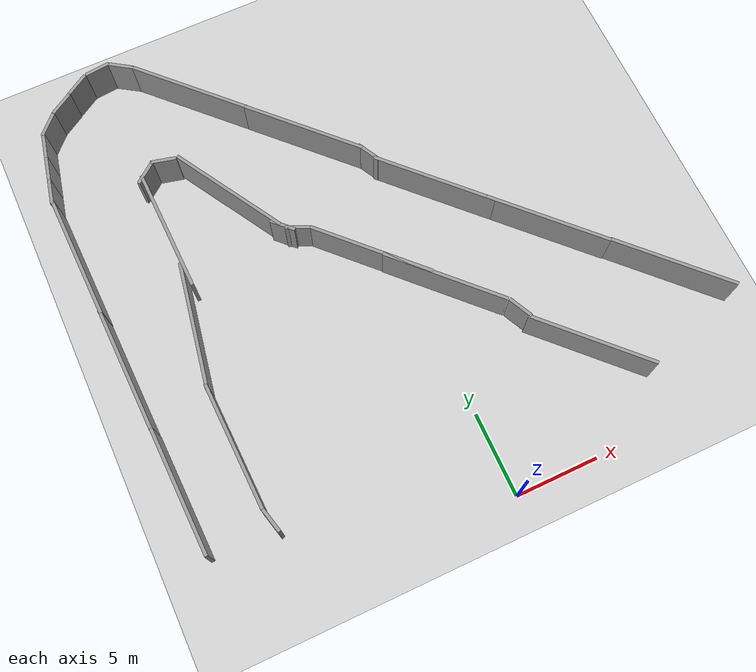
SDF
<sdf version="1.7">
 <world name="default">
  <model name="ground_plane">
   <static>1</static>
   <link name="link">
    <collision name="collision">
     <geometry><plane><normal>0 0 1</normal><size>100 100</size></plane></geometry>
     <surface>
      <contact><collide_bitmask>65535</collide_bitmask></contact>
      <friction><ode><mu>100</mu><mu2>50</mu2></ode></friction>
     </surface>
    </collision>
    <visual name="visual">
     <cast_shadows>0</cast_shadows>
     <geometry><plane><normal>0 0 1</normal><size>100 100</size></plane></geometry>
     <material>
      <script><uri>file://media/materials/scripts/gazebo.material</uri><name>Gazebo/Grey</name></script>
     </material>
    </visual>
   </link>
  </model>
  <model name="grey_wall_small_4">
   <link name="link">
    <pose>0 0 1.4 0 -0 0</pose>
    <inertial>
     <inertia><ixx>0</ixx><ixy>0</ixy><ixz>0</ixz><iyy>0</iyy><iyz>0</iyz><izz>0</izz></inertia>
     <mass>0</mass>
    </inertial>
    <visual name="visual">
     <cast_shadows>0</cast_shadows>
     <geometry><box><size>1.53178 0.2 2.8</size></box></geometry>
     <material>
      <script>
       <uri>model://grey_wall/materials/scripts</uri>
       <uri>model://grey_wall/materials/textures</uri>
       <name>vrc/grey_wall</name>
      </script>
      <shader type="pixel"/>
     </material>
    </visual>
    <collision name="collision">
     <geometry><box><size>1.53178 0.2 2.8</size></box></geometry>
     <surface>
      <friction>
       <ode><mu>1</mu><mu2>1</mu2><fdir1>0 0 0</fdir1><slip1>0</slip1><slip2>0</slip2></ode>
       <torsional>
        <coefficient>1</coefficient>
        <patch_radius>0</patch_radius>
        <surface_radius>0</surface_radius>
        <use_patch_radius>1</use_patch_radius>
        <ode><slip>0</slip></ode>
       </torsional>
      </friction>
      <bounce><restitution_coefficient>0</restitution_coefficient><threshold>1e+06</threshold></bounce>
      <contact>
       <collide_without_contact>0</collide_without_contact>
       <collide_without_contact_bitmask>1</collide_without_contact_bitmask>
       <collide_bitmask>1</collide_bitmask>
       <ode>
        <soft_cfm>0</soft_cfm>
        <soft_erp>0.2</soft_erp>
        <kp>1e+13</kp>
        <kd>1</kd>
        <max_vel>0.01</max_vel>
        <min_depth>0</min_depth>
       </ode>
       <bullet>
        <split_impulse>1</split_impulse>
        <split_impulse_penetration_threshold>-0.01</split_impulse_penetration_threshold>
        <soft_cfm>0</soft_cfm>
        <soft_erp>0.2</soft_erp>
        <kp>1e+13</kp>
        <kd>1</kd>
       </bullet>
      </contact>
     </surface>
    </collision>
   </link>
   <static>1</static>
   <pose>-12.7106 4.02154 0 0 0 -1.32722</pose>
  </model>
  <model name="grey_wall_5">
   <static>1</static>
   <link name="link">
    <pose>0 0 1.4 0 -0 0</pose>
    <collision name="collision"><geometry><box><size>7.5 0.2 2.8</size></box></geometry></collision>
    <visual name="visual">
     <cast_shadows>0</cast_shadows>
     <geometry><box><size>7.5 0.2 2.8</size></box></geometry>
     <material>
      <script>
       <uri>model://grey_wall/materials/scripts</uri>
       <uri>model://grey_wall/materials/textures</uri>
       <name>vrc/grey_wall</name>
      </script>
     </material>
    </visual>
   </link>
   <pose>-16.5624 7.45087 0 0 0 -1.54263</pose>
  </model>
  <model name="grey_wall_5_clone">
   <static>1</static>
   <link name="link">
    <pose>0 0 1.4 0 -0 0</pose>
    <collision name="collision"><geometry><box><size>7.5 0.2 2.8</size></box></geometry></collision>
    <visual name="visual">
     <cast_shadows>0</cast_shadows>
     <geometry><box><size>7.5 0.2 2.8</size></box></geometry>
     <material>
      <script>
       <uri>model://grey_wall/materials/scripts</uri>
       <uri>model://grey_wall/materials/textures</uri>
       <name>vrc/grey_wall</name>
      </script>
     </material>
    </visual>
   </link>
   <pose>-13.0002 8.47563 0 0 0 -1.54263</pose>
  </model>
  <model name="grey_wall_5_clone_0">
   <static>1</static>
   <link name="link">
    <pose>0 0 1.4 0 -0 0</pose>
    <collision name="collision"><geometry><box><size>7.5 0.2 2.8</size></box></geometry></collision>
    <visual name="visual">
     <cast_shadows>0</cast_shadows>
     <geometry><box><size>7.5 0.2 2.8</size></box></geometry>
     <material>
      <script>
       <uri>model://grey_wall/materials/scripts</uri>
       <uri>model://grey_wall/materials/textures</uri>
       <name>vrc/grey_wall</name>
      </script>
     </material>
    </visual>
   </link>
   <pose>-16.7856 14.8865 0 0 0 -1.54263</pose>
  </model>
  <model name="grey_wall_5_clone_1">
   <static>1</static>
   <link name="link">
    <pose>0 0 1.4 0 -0 0</pose>
    <collision name="collision"><geometry><box><size>7.5 0.2 2.8</size></box></geometry></collision>
    <visual name="visual">
     <cast_shadows>0</cast_shadows>
     <geometry><box><size>7.5 0.2 2.8</size></box></geometry>
     <material>
      <script>
       <uri>model://grey_wall/materials/scripts</uri>
       <uri>model://grey_wall/materials/textures</uri>
       <name>vrc/grey_wall</name>
      </script>
     </material>
    </visual>
   </link>
   <pose>-12.4471 15.6811 0 0 0 -1.74901</pose>
  </model>
  <model name="grey_wall_5_clone_2">
   <static>1</static>
   <link name="link">
    <pose>0 0 1.4 0 -0 0</pose>
    <collision name="collision"><geometry><box><size>7.5 0.2 2.8</size></box></geometry></collision>
    <visual name="visual">
     <cast_shadows>0</cast_shadows>
     <geometry><box><size>7.5 0.2 2.8</size></box></geometry>
     <material>
      <script>
       <uri>model://grey_wall/materials/scripts</uri>
       <uri>model://grey_wall/materials/textures</uri>
       <name>vrc/grey_wall</name>
      </script>
     </material>
    </visual>
   </link>
   <pose>-16.9651 22.1924 0 0 0 -1.54263</pose>
  </model>
  <model name="grey_wall_5_clone_3">
   <static>1</static>
   <link name="link">
    <pose>0 0 1.4 0 -0 0</pose>
    <collision name="collision"><geometry><box><size>7.5 0.2 2.8</size></box></geometry></collision>
    <visual name="visual">
     <cast_shadows>0</cast_shadows>
     <geometry><box><size>7.5 0.2 2.8</size></box></geometry>
     <material>
      <script>
       <uri>model://grey_wall/materials/scripts</uri>
       <uri>model://grey_wall/materials/textures</uri>
       <name>vrc/grey_wall</name>
      </script>
     </material>
    </visual>
   </link>
   <pose>-11.7315 21.5967 0 0 0 -1.54263</pose>
  </model>
  <model name="grey_wall_small_6">
   <link name="link">
    <pose>0 0 1.4 0 -0 0</pose>
    <inertial>
     <inertia><ixx>0</ixx><ixy>0</ixy><ixz>0</ixz><iyy>0</iyy><iyz>0</iyz><izz>0</izz></inertia>
     <mass>0</mass>
    </inertial>
    <visual name="visual">
     <cast_shadows>0</cast_shadows>
     <geometry><box><size>1.53178 0.2 2.8</size></box></geometry>
     <material>
      <script>
       <uri>model://grey_wall/materials/scripts</uri>
       <uri>model://grey_wall/materials/textures</uri>
       <name>vrc/grey_wall</name>
      </script>
      <shader type="pixel"/>
     </material>
    </visual>
    <collision name="collision">
     <geometry><box><size>1.53178 0.2 2.8</size></box></geometry>
     <surface>
      <friction>
       <ode><mu>1</mu><mu2>1</mu2><fdir1>0 0 0</fdir1><slip1>0</slip1><slip2>0</slip2></ode>
       <torsional>
        <coefficient>1</coefficient>
        <patch_radius>0</patch_radius>
        <surface_radius>0</surface_radius>
        <use_patch_radius>1</use_patch_radius>
        <ode><slip>0</slip></ode>
       </torsional>
      </friction>
      <bounce><restitution_coefficient>0</restitution_coefficient><threshold>1e+06</threshold></bounce>
      <contact>
       <collide_without_contact>0</collide_without_contact>
       <collide_without_contact_bitmask>1</collide_without_contact_bitmask>
       <collide_bitmask>1</collide_bitmask>
       <ode>
        <soft_cfm>0</soft_cfm>
        <soft_erp>0.2</soft_erp>
        <kp>1e+13</kp>
        <kd>1</kd>
        <max_vel>0.01</max_vel>
        <min_depth>0</min_depth>
       </ode>
       <bullet>
        <split_impulse>1</split_impulse>
        <split_impulse_penetration_threshold>-0.01</split_impulse_penetration_threshold>
        <soft_cfm>0</soft_cfm>
        <soft_erp>0.2</soft_erp>
        <kp>1e+13</kp>
        <kd>1</kd>
       </bullet>
      </contact>
     </surface>
    </collision>
   </link>
   <static>1</static>
   <pose>-16.9602 26.6179 0 0 0 -1.78958</pose>
  </model>
  <model name="grey_wall_small_6_clone">
   <link name="link">
    <pose>0 0 1.4 0 -0 0</pose>
    <inertial>
     <inertia><ixx>0</ixx><ixy>0</ixy><ixz>0</ixz><iyy>0</iyy><iyz>0</iyz><izz>0</izz></inertia>
     <mass>0</mass>
    </inertial>
    <visual name="visual">
     <cast_shadows>0</cast_shadows>
     <geometry><box><size>1.53178 0.2 2.8</size></box></geometry>
     <material>
      <script>
       <uri>model://grey_wall/materials/scripts</uri>
       <uri>model://grey_wall/materials/textures</uri>
       <name>vrc/grey_wall</name>
      </script>
      <shader type="pixel"/>
     </material>
    </visual>
    <collision name="collision">
     <geometry><box><size>1.53178 0.2 2.8</size></box></geometry>
     <surface>
      <friction>
       <ode><mu>1</mu><mu2>1</mu2><fdir1>0 0 0</fdir1><slip1>0</slip1><slip2>0</slip2></ode>
       <torsional>
        <coefficient>1</coefficient>
        <patch_radius>0</patch_radius>
        <surface_radius>0</surface_radius>
        <use_patch_radius>1</use_patch_radius>
        <ode><slip>0</slip></ode>
       </torsional>
      </friction>
      <bounce><restitution_coefficient>0</restitution_coefficient><threshold>1e+06</threshold></bounce>
      <contact>
       <collide_without_contact>0</collide_without_contact>
       <collide_without_contact_bitmask>1</collide_without_contact_bitmask>
       <collide_bitmask>1</collide_bitmask>
       <ode>
        <soft_cfm>0</soft_cfm>
        <soft_erp>0.2</soft_erp>
        <kp>1e+13</kp>
        <kd>1</kd>
        <max_vel>0.01</max_vel>
        <min_depth>0</min_depth>
       </ode>
       <bullet>
        <split_impulse>1</split_impulse>
        <split_impulse_penetration_threshold>-0.01</split_impulse_penetration_threshold>
        <soft_cfm>0</soft_cfm>
        <soft_erp>0.2</soft_erp>
        <kp>1e+13</kp>
        <kd>1</kd>
       </bullet>
      </contact>
     </surface>
    </collision>
   </link>
   <static>1</static>
   <pose>-16.6343 28.0738 0 0 0 -1.78958</pose>
  </model>
  <model name="grey_wall_small_6_clone_0">
   <link name="link">
    <pose>0 0 1.4 0 -0 0</pose>
    <inertial>
     <inertia><ixx>0</ixx><ixy>0</ixy><ixz>0</ixz><iyy>0</iyy><iyz>0</iyz><izz>0</izz></inertia>
     <mass>0</mass>
    </inertial>
    <visual name="visual">
     <cast_shadows>0</cast_shadows>
     <geometry><box><size>1.53178 0.2 2.8</size></box></geometry>
     <material>
      <script>
       <uri>model://grey_wall/materials/scripts</uri>
       <uri>model://grey_wall/materials/textures</uri>
       <name>vrc/grey_wall</name>
      </script>
      <shader type="pixel"/>
     </material>
    </visual>
    <collision name="collision">
     <geometry><box><size>1.53178 0.2 2.8</size></box></geometry>
     <surface>
      <friction>
       <ode><mu>1</mu><mu2>1</mu2><fdir1>0 0 0</fdir1><slip1>0</slip1><slip2>0</slip2></ode>
       <torsional>
        <coefficient>1</coefficient>
        <patch_radius>0</patch_radius>
        <surface_radius>0</surface_radius>
        <use_patch_radius>1</use_patch_radius>
        <ode><slip>0</slip></ode>
       </torsional>
      </friction>
      <bounce><restitution_coefficient>0</restitution_coefficient><threshold>1e+06</threshold></bounce>
      <contact>
       <collide_without_contact>0</collide_without_contact>
       <collide_without_contact_bitmask>1</collide_without_contact_bitmask>
       <collide_bitmask>1</collide_bitmask>
       <ode>
        <soft_cfm>0</soft_cfm>
        <soft_erp>0.2</soft_erp>
        <kp>1e+13</kp>
        <kd>1</kd>
        <max_vel>0.01</max_vel>
        <min_depth>0</min_depth>
       </ode>
       <bullet>
        <split_impulse>1</split_impulse>
        <split_impulse_penetration_threshold>-0.01</split_impulse_penetration_threshold>
        <soft_cfm>0</soft_cfm>
        <soft_erp>0.2</soft_erp>
        <kp>1e+13</kp>
        <kd>1</kd>
       </bullet>
      </contact>
     </surface>
    </collision>
   </link>
   <static>1</static>
   <pose>-16.31 29.53 0 0 0 -1.78958</pose>
  </model>
  <model name="grey_wall_small_7">
   <link name="link">
    <pose>0 0 1.4 0 -0 0</pose>
    <inertial>
     <inertia><ixx>0</ixx><ixy>0</ixy><ixz>0</ixz><iyy>0</iyy><iyz>0</iyz><izz>0</izz></inertia>
     <mass>0</mass>
    </inertial>
    <visual name="visual">
     <cast_shadows>0</cast_shadows>
     <geometry><box><size>1.53178 0.2 2.8</size></box></geometry>
     <material>
      <script>
       <uri>model://grey_wall/materials/scripts</uri>
       <uri>model://grey_wall/materials/textures</uri>
       <name>vrc/grey_wall</name>
      </script>
      <shader type="pixel"/>
     </material>
    </visual>
    <collision name="collision">
     <geometry><box><size>1.53178 0.2 2.8</size></box></geometry>
     <surface>
      <friction>
       <ode><mu>1</mu><mu2>1</mu2><fdir1>0 0 0</fdir1><slip1>0</slip1><slip2>0</slip2></ode>
       <torsional>
        <coefficient>1</coefficient>
        <patch_radius>0</patch_radius>
        <surface_radius>0</surface_radius>
        <use_patch_radius>1</use_patch_radius>
        <ode><slip>0</slip></ode>
       </torsional>
      </friction>
      <bounce><restitution_coefficient>0</restitution_coefficient><threshold>1e+06</threshold></bounce>
      <contact>
       <collide_without_contact>0</collide_without_contact>
       <collide_without_contact_bitmask>1</collide_without_contact_bitmask>
       <collide_bitmask>1</collide_bitmask>
       <ode>
        <soft_cfm>0</soft_cfm>
        <soft_erp>0.2</soft_erp>
        <kp>1e+13</kp>
        <kd>1</kd>
        <max_vel>0.01</max_vel>
        <min_depth>0</min_depth>
       </ode>
       <bullet>
        <split_impulse>1</split_impulse>
        <split_impulse_penetration_threshold>-0.01</split_impulse_penetration_threshold>
        <soft_cfm>0</soft_cfm>
        <soft_erp>0.2</soft_erp>
        <kp>1e+13</kp>
        <kd>1</kd>
       </bullet>
      </contact>
     </surface>
    </collision>
   </link>
   <static>1</static>
   <pose>-15.667 30.7806 -0 0 -0 0.800233</pose>
  </model>
  <model name="grey_wall_small_8">
   <link name="link">
    <pose>0 0 1.4 0 -0 0</pose>
    <inertial>
     <inertia><ixx>0</ixx><ixy>0</ixy><ixz>0</ixz><iyy>0</iyy><iyz>0</iyz><izz>0</izz></inertia>
     <mass>0</mass>
    </inertial>
    <visual name="visual">
     <cast_shadows>0</cast_shadows>
     <geometry><box><size>1.53178 0.2 2.8</size></box></geometry>
     <material>
      <script>
       <uri>model://grey_wall/materials/scripts</uri>
       <uri>model://grey_wall/materials/textures</uri>
       <name>vrc/grey_wall</name>
      </script>
      <shader type="pixel"/>
     </material>
    </visual>
    <collision name="collision">
     <geometry><box><size>1.53178 0.2 2.8</size></box></geometry>
     <surface>
      <friction>
       <ode><mu>1</mu><mu2>1</mu2><fdir1>0 0 0</fdir1><slip1>0</slip1><slip2>0</slip2></ode>
       <torsional>
        <coefficient>1</coefficient>
        <patch_radius>0</patch_radius>
        <surface_radius>0</surface_radius>
        <use_patch_radius>1</use_patch_radius>
        <ode><slip>0</slip></ode>
       </torsional>
      </friction>
      <bounce><restitution_coefficient>0</restitution_coefficient><threshold>1e+06</threshold></bounce>
      <contact>
       <collide_without_contact>0</collide_without_contact>
       <collide_without_contact_bitmask>1</collide_without_contact_bitmask>
       <collide_bitmask>1</collide_bitmask>
       <ode>
        <soft_cfm>0</soft_cfm>
        <soft_erp>0.2</soft_erp>
        <kp>1e+13</kp>
        <kd>1</kd>
        <max_vel>0.01</max_vel>
        <min_depth>0</min_depth>
       </ode>
       <bullet>
        <split_impulse>1</split_impulse>
        <split_impulse_penetration_threshold>-0.01</split_impulse_penetration_threshold>
        <soft_cfm>0</soft_cfm>
        <soft_erp>0.2</soft_erp>
        <kp>1e+13</kp>
        <kd>1</kd>
       </bullet>
      </contact>
     </surface>
    </collision>
   </link>
   <static>1</static>
   <pose>-14.4817 31.7597 -0 0 -0 0.555531</pose>
  </model>
  <model name="grey_wall_small_8_clone">
   <link name="link">
    <pose>0 0 1.4 0 -0 0</pose>
    <inertial>
     <inertia><ixx>0</ixx><ixy>0</ixy><ixz>0</ixz><iyy>0</iyy><iyz>0</iyz><izz>0</izz></inertia>
     <mass>0</mass>
    </inertial>
    <visual name="visual">
     <cast_shadows>0</cast_shadows>
     <geometry><box><size>1.53178 0.2 2.8</size></box></geometry>
     <material>
      <script>
       <uri>model://grey_wall/materials/scripts</uri>
       <uri>model://grey_wall/materials/textures</uri>
       <name>vrc/grey_wall</name>
      </script>
      <shader type="pixel"/>
     </material>
    </visual>
    <collision name="collision">
     <geometry><box><size>1.53178 0.2 2.8</size></box></geometry>
     <surface>
      <friction>
       <ode><mu>1</mu><mu2>1</mu2><fdir1>0 0 0</fdir1><slip1>0</slip1><slip2>0</slip2></ode>
       <torsional>
        <coefficient>1</coefficient>
        <patch_radius>0</patch_radius>
        <surface_radius>0</surface_radius>
        <use_patch_radius>1</use_patch_radius>
        <ode><slip>0</slip></ode>
       </torsional>
      </friction>
      <bounce><restitution_coefficient>0</restitution_coefficient><threshold>1e+06</threshold></bounce>
      <contact>
       <collide_without_contact>0</collide_without_contact>
       <collide_without_contact_bitmask>1</collide_without_contact_bitmask>
       <collide_bitmask>1</collide_bitmask>
       <ode>
        <soft_cfm>0</soft_cfm>
        <soft_erp>0.2</soft_erp>
        <kp>1e+13</kp>
        <kd>1</kd>
        <max_vel>0.01</max_vel>
        <min_depth>0</min_depth>
       </ode>
       <bullet>
        <split_impulse>1</split_impulse>
        <split_impulse_penetration_threshold>-0.01</split_impulse_penetration_threshold>
        <soft_cfm>0</soft_cfm>
        <soft_erp>0.2</soft_erp>
        <kp>1e+13</kp>
        <kd>1</kd>
       </bullet>
      </contact>
     </surface>
    </collision>
   </link>
   <static>1</static>
   <pose>-13.2113 32.5753 -0 0 -0 0.555531</pose>
  </model>
  <model name="grey_wall_small_8_clone_0">
   <link name="link">
    <pose>0 0 1.4 0 -0 0</pose>
    <inertial>
     <inertia><ixx>0</ixx><ixy>0</ixy><ixz>0</ixz><iyy>0</iyy><iyz>0</iyz><izz>0</izz></inertia>
     <mass>0</mass>
    </inertial>
    <visual name="visual">
     <cast_shadows>0</cast_shadows>
     <geometry><box><size>1.53178 0.2 2.8</size></box></geometry>
     <material>
      <script>
       <uri>model://grey_wall/materials/scripts</uri>
       <uri>model://grey_wall/materials/textures</uri>
       <name>vrc/grey_wall</name>
      </script>
      <shader type="pixel"/>
     </material>
    </visual>
    <collision name="collision">
     <geometry><box><size>1.53178 0.2 2.8</size></box></geometry>
     <surface>
      <friction>
       <ode><mu>1</mu><mu2>1</mu2><fdir1>0 0 0</fdir1><slip1>0</slip1><slip2>0</slip2></ode>
       <torsional>
        <coefficient>1</coefficient>
        <patch_radius>0</patch_radius>
        <surface_radius>0</surface_radius>
        <use_patch_radius>1</use_patch_radius>
        <ode><slip>0</slip></ode>
       </torsional>
      </friction>
      <bounce><restitution_coefficient>0</restitution_coefficient><threshold>1e+06</threshold></bounce>
      <contact>
       <collide_without_contact>0</collide_without_contact>
       <collide_without_contact_bitmask>1</collide_without_contact_bitmask>
       <collide_bitmask>1</collide_bitmask>
       <ode>
        <soft_cfm>0</soft_cfm>
        <soft_erp>0.2</soft_erp>
        <kp>1e+13</kp>
        <kd>1</kd>
        <max_vel>0.01</max_vel>
        <min_depth>0</min_depth>
       </ode>
       <bullet>
        <split_impulse>1</split_impulse>
        <split_impulse_penetration_threshold>-0.01</split_impulse_penetration_threshold>
        <soft_cfm>0</soft_cfm>
        <soft_erp>0.2</soft_erp>
        <kp>1e+13</kp>
        <kd>1</kd>
       </bullet>
      </contact>
     </surface>
    </collision>
   </link>
   <static>1</static>
   <pose>-11.7464 33.068 0 0 -0 0.102813</pose>
  </model>
  <model name="grey_wall_6">
   <static>1</static>
   <link name="link">
    <pose>0 0 1.4 0 -0 0</pose>
    <collision name="collision"><geometry><box><size>7.5 0.2 2.8</size></box></geometry></collision>
    <visual name="visual">
     <cast_shadows>0</cast_shadows>
     <geometry><box><size>7.5 0.2 2.8</size></box></geometry>
     <material>
      <script>
       <uri>model://grey_wall/materials/scripts</uri>
       <uri>model://grey_wall/materials/textures</uri>
       <name>vrc/grey_wall</name>
      </script>
     </material>
    </visual>
   </link>
   <pose>7.26864 5.63896 -0 0 0 -0.79968</pose>
  </model>
  <model name="grey_wall_6_clone_1">
   <static>1</static>
   <link name="link">
    <pose>0 0 1.4 0 -0 0</pose>
    <collision name="collision"><geometry><box><size>7.5 0.2 2.8</size></box></geometry></collision>
    <visual name="visual">
     <cast_shadows>0</cast_shadows>
     <geometry><box><size>7.5 0.2 2.8</size></box></geometry>
     <material>
      <script>
       <uri>model://grey_wall/materials/scripts</uri>
       <uri>model://grey_wall/materials/textures</uri>
       <name>vrc/grey_wall</name>
      </script>
     </material>
    </visual>
   </link>
   <pose>-7.59676 22.4079 0 0 0 -1.04224</pose>
  </model>
  <model name="grey_wall_small_8_clone_clone">
   <link name="link">
    <pose>0 0 1.4 0 -0 0</pose>
    <inertial>
     <inertia><ixx>0</ixx><ixy>0</ixy><ixz>0</ixz><iyy>0</iyy><iyz>0</iyz><izz>0</izz></inertia>
     <mass>0</mass>
    </inertial>
    <visual name="visual">
     <cast_shadows>0</cast_shadows>
     <geometry><box><size>1.53178 0.2 2.8</size></box></geometry>
     <material>
      <script>
       <uri>model://grey_wall/materials/scripts</uri>
       <uri>model://grey_wall/materials/textures</uri>
       <name>vrc/grey_wall</name>
      </script>
      <shader type="pixel"/>
     </material>
    </visual>
    <collision name="collision">
     <geometry><box><size>1.53178 0.2 2.8</size></box></geometry>
     <surface>
      <friction>
       <ode><mu>1</mu><mu2>1</mu2><fdir1>0 0 0</fdir1><slip1>0</slip1><slip2>0</slip2></ode>
       <torsional>
        <coefficient>1</coefficient>
        <patch_radius>0</patch_radius>
        <surface_radius>0</surface_radius>
        <use_patch_radius>1</use_patch_radius>
        <ode><slip>0</slip></ode>
       </torsional>
      </friction>
      <bounce><restitution_coefficient>0</restitution_coefficient><threshold>1e+06</threshold></bounce>
      <contact>
       <collide_without_contact>0</collide_without_contact>
       <collide_without_contact_bitmask>1</collide_without_contact_bitmask>
       <collide_bitmask>1</collide_bitmask>
       <ode>
        <soft_cfm>0</soft_cfm>
        <soft_erp>0.2</soft_erp>
        <kp>1e+13</kp>
        <kd>1</kd>
        <max_vel>0.01</max_vel>
        <min_depth>0</min_depth>
       </ode>
       <bullet>
        <split_impulse>1</split_impulse>
        <split_impulse_penetration_threshold>-0.01</split_impulse_penetration_threshold>
        <soft_cfm>0</soft_cfm>
        <soft_erp>0.2</soft_erp>
        <kp>1e+13</kp>
        <kd>1</kd>
       </bullet>
      </contact>
     </surface>
    </collision>
   </link>
   <static>1</static>
   <pose>-10.3732 32.6921 0 0 0 -0.581724</pose>
  </model>
  <model name="grey_wall_6_clone_1_clone">
   <static>1</static>
   <link name="link">
    <pose>0 0 1.4 0 -0 0</pose>
    <collision name="collision"><geometry><box><size>7.5 0.2 2.8</size></box></geometry></collision>
    <visual name="visual">
     <cast_shadows>0</cast_shadows>
     <geometry><box><size>7.5 0.2 2.8</size></box></geometry>
     <material>
      <script>
       <uri>model://grey_wall/materials/scripts</uri>
       <uri>model://grey_wall/materials/textures</uri>
       <name>vrc/grey_wall</name>
      </script>
     </material>
    </visual>
   </link>
   <pose>-7.20728 29.6625 -0 0 0 -0.79968</pose>
  </model>
  <model name="grey_wall_6_clone_1_clone_0">
   <static>1</static>
   <link name="link">
    <pose>0 0 1.4 0 -0 0</pose>
    <collision name="collision"><geometry><box><size>7.5 0.2 2.8</size></box></geometry></collision>
    <visual name="visual">
     <cast_shadows>0</cast_shadows>
     <geometry><box><size>7.5 0.2 2.8</size></box></geometry>
     <material>
      <script>
       <uri>model://grey_wall/materials/scripts</uri>
       <uri>model://grey_wall/materials/textures</uri>
       <name>vrc/grey_wall</name>
      </script>
     </material>
    </visual>
   </link>
   <pose>-2.04813 24.3419 -0 0 0 -0.79968</pose>
  </model>
  <model name="grey_wall_small_10">
   <link name="link">
    <pose>0 0 1.4 0 -0 0</pose>
    <inertial>
     <inertia><ixx>0</ixx><ixy>0</ixy><ixz>0</ixz><iyy>0</iyy><iyz>0</iyz><izz>0</izz></inertia>
     <mass>0</mass>
    </inertial>
    <visual name="visual">
     <cast_shadows>0</cast_shadows>
     <geometry><box><size>1.53178 0.2 2.8</size></box></geometry>
     <material>
      <script>
       <uri>model://grey_wall/materials/scripts</uri>
       <uri>model://grey_wall/materials/textures</uri>
       <name>vrc/grey_wall</name>
      </script>
      <shader type="pixel"/>
     </material>
    </visual>
    <collision name="collision">
     <geometry><box><size>1.53178 0.2 2.8</size></box></geometry>
     <surface>
      <friction>
       <ode><mu>1</mu><mu2>1</mu2><fdir1>0 0 0</fdir1><slip1>0</slip1><slip2>0</slip2></ode>
       <torsional>
        <coefficient>1</coefficient>
        <patch_radius>0</patch_radius>
        <surface_radius>0</surface_radius>
        <use_patch_radius>1</use_patch_radius>
        <ode><slip>0</slip></ode>
       </torsional>
      </friction>
      <bounce><restitution_coefficient>0</restitution_coefficient><threshold>1e+06</threshold></bounce>
      <contact>
       <collide_without_contact>0</collide_without_contact>
       <collide_without_contact_bitmask>1</collide_without_contact_bitmask>
       <collide_bitmask>1</collide_bitmask>
       <ode>
        <soft_cfm>0</soft_cfm>
        <soft_erp>0.2</soft_erp>
        <kp>1e+13</kp>
        <kd>1</kd>
        <max_vel>0.01</max_vel>
        <min_depth>0</min_depth>
       </ode>
       <bullet>
        <split_impulse>1</split_impulse>
        <split_impulse_penetration_threshold>-0.01</split_impulse_penetration_threshold>
        <soft_cfm>0</soft_cfm>
        <soft_erp>0.2</soft_erp>
        <kp>1e+13</kp>
        <kd>1</kd>
       </bullet>
      </contact>
     </surface>
    </collision>
   </link>
   <static>1</static>
   <pose>-4.85073 18.5777 0 0 0 -0.421102</pose>
  </model>
  <model name="grey_wall_6_clone_1_clone_1">
   <static>1</static>
   <link name="link">
    <pose>0 0 1.4 0 -0 0</pose>
    <collision name="collision"><geometry><box><size>7.5 0.2 2.8</size></box></geometry></collision>
    <visual name="visual">
     <cast_shadows>0</cast_shadows>
     <geometry><box><size>7.5 0.2 2.8</size></box></geometry>
     <material>
      <script>
       <uri>model://grey_wall/materials/scripts</uri>
       <uri>model://grey_wall/materials/textures</uri>
       <name>vrc/grey_wall</name>
      </script>
     </material>
    </visual>
   </link>
   <pose>-1.62974 15.6407 -0 0 0 -0.79968</pose>
  </model>
  <model name="grey_wall_6_clone_1_clone_2">
   <static>1</static>
   <link name="link">
    <pose>0 0 1.4 0 -0 0</pose>
    <collision name="collision"><geometry><box><size>7.5 0.2 2.8</size></box></geometry></collision>
    <visual name="visual">
     <cast_shadows>0</cast_shadows>
     <geometry><box><size>7.5 0.2 2.8</size></box></geometry>
     <material>
      <script>
       <uri>model://grey_wall/materials/scripts</uri>
       <uri>model://grey_wall/materials/textures</uri>
       <name>vrc/grey_wall</name>
      </script>
     </material>
    </visual>
   </link>
   <pose>1.47741 12.391 -0 0 0 -0.79968</pose>
  </model>
  <model name="grey_wall_small_11">
   <link name="link">
    <pose>0 0 1.4 0 -0 0</pose>
    <inertial>
     <inertia><ixx>0</ixx><ixy>0</ixy><ixz>0</ixz><iyy>0</iyy><iyz>0</iyz><izz>0</izz></inertia>
     <mass>0</mass>
    </inertial>
    <visual name="visual">
     <cast_shadows>0</cast_shadows>
     <geometry><box><size>1.53178 0.2 2.8</size></box></geometry>
     <material>
      <script>
       <uri>model://grey_wall/materials/scripts</uri>
       <uri>model://grey_wall/materials/textures</uri>
       <name>vrc/grey_wall</name>
      </script>
      <shader type="pixel"/>
     </material>
    </visual>
    <collision name="collision">
     <geometry><box><size>1.53178 0.2 2.8</size></box></geometry>
     <surface>
      <friction>
       <ode><mu>1</mu><mu2>1</mu2><fdir1>0 0 0</fdir1><slip1>0</slip1><slip2>0</slip2></ode>
       <torsional>
        <coefficient>1</coefficient>
        <patch_radius>0</patch_radius>
        <surface_radius>0</surface_radius>
        <use_patch_radius>1</use_patch_radius>
        <ode><slip>0</slip></ode>
       </torsional>
      </friction>
      <bounce><restitution_coefficient>0</restitution_coefficient><threshold>1e+06</threshold></bounce>
      <contact>
       <collide_without_contact>0</collide_without_contact>
       <collide_without_contact_bitmask>1</collide_without_contact_bitmask>
       <collide_bitmask>1</collide_bitmask>
       <ode>
        <soft_cfm>0</soft_cfm>
        <soft_erp>0.2</soft_erp>
        <kp>1e+13</kp>
        <kd>1</kd>
        <max_vel>0.01</max_vel>
        <min_depth>0</min_depth>
       </ode>
       <bullet>
        <split_impulse>1</split_impulse>
        <split_impulse_penetration_threshold>-0.01</split_impulse_penetration_threshold>
        <soft_cfm>0</soft_cfm>
        <soft_erp>0.2</soft_erp>
        <kp>1e+13</kp>
        <kd>1</kd>
       </bullet>
      </contact>
     </surface>
    </collision>
   </link>
   <static>1</static>
   <pose>0.784588 21.1992 0 0 0 -1.08132</pose>
  </model>
  <model name="grey_wall_6_clone_1_clone_3">
   <static>1</static>
   <link name="link">
    <pose>0 0 1.4 0 -0 0</pose>
    <collision name="collision"><geometry><box><size>7.5 0.2 2.8</size></box></geometry></collision>
    <visual name="visual">
     <cast_shadows>0</cast_shadows>
     <geometry><box><size>7.5 0.2 2.8</size></box></geometry>
     <material>
      <script>
       <uri>model://grey_wall/materials/scripts</uri>
       <uri>model://grey_wall/materials/textures</uri>
       <name>vrc/grey_wall</name>
      </script>
     </material>
    </visual>
   </link>
   <pose>3.53604 18.0815 -0 0 0 -0.79968</pose>
  </model>
  <model name="grey_wall_small_12">
   <link name="link">
    <pose>0 0 1.4 0 -0 0</pose>
    <inertial>
     <inertia><ixx>0</ixx><ixy>0</ixy><ixz>0</ixz><iyy>0</iyy><iyz>0</iyz><izz>0</izz></inertia>
     <mass>0</mass>
    </inertial>
    <visual name="visual">
     <cast_shadows>0</cast_shadows>
     <geometry><box><size>1.53178 0.2 2.8</size></box></geometry>
     <material>
      <script>
       <uri>model://grey_wall/materials/scripts</uri>
       <uri>model://grey_wall/materials/textures</uri>
       <name>vrc/grey_wall</name>
      </script>
      <shader type="pixel"/>
     </material>
    </visual>
    <collision name="collision">
     <geometry><box><size>1.53178 0.2 2.8</size></box></geometry>
     <surface>
      <friction>
       <ode><mu>1</mu><mu2>1</mu2><fdir1>0 0 0</fdir1><slip1>0</slip1><slip2>0</slip2></ode>
       <torsional>
        <coefficient>1</coefficient>
        <patch_radius>0</patch_radius>
        <surface_radius>0</surface_radius>
        <use_patch_radius>1</use_patch_radius>
        <ode><slip>0</slip></ode>
       </torsional>
      </friction>
      <bounce><restitution_coefficient>0</restitution_coefficient><threshold>1e+06</threshold></bounce>
      <contact>
       <collide_without_contact>0</collide_without_contact>
       <collide_without_contact_bitmask>1</collide_without_contact_bitmask>
       <collide_bitmask>1</collide_bitmask>
       <ode>
        <soft_cfm>0</soft_cfm>
        <soft_erp>0.2</soft_erp>
        <kp>1e+13</kp>
        <kd>1</kd>
        <max_vel>0.01</max_vel>
        <min_depth>0</min_depth>
       </ode>
       <bullet>
        <split_impulse>1</split_impulse>
        <split_impulse_penetration_threshold>-0.01</split_impulse_penetration_threshold>
        <soft_cfm>0</soft_cfm>
        <soft_erp>0.2</soft_erp>
        <kp>1e+13</kp>
        <kd>1</kd>
       </bullet>
      </contact>
     </surface>
    </collision>
   </link>
   <static>1</static>
   <pose>4.48051 8.96075 -0 0 0 -1.12298</pose>
  </model>
  <model name="grey_wall_6_clone_1_clone_4">
   <static>1</static>
   <link name="link">
    <pose>0 0 1.4 0 -0 0</pose>
    <collision name="collision"><geometry><box><size>7.5 0.2 2.8</size></box></geometry></collision>
    <visual name="visual">
     <cast_shadows>0</cast_shadows>
     <geometry><box><size>7.5 0.2 2.8</size></box></geometry>
     <material>
      <script>
       <uri>model://grey_wall/materials/scripts</uri>
       <uri>model://grey_wall/materials/textures</uri>
       <name>vrc/grey_wall</name>
      </script>
     </material>
    </visual>
   </link>
   <pose>8.39752 13.0831 -0 0 0 -0.79968</pose>
  </model>
  <model name="grey_wall_6_clone_1_clone_5">
   <static>1</static>
   <link name="link">
    <pose>0 0 1.4 0 -0 0</pose>
    <collision name="collision"><geometry><box><size>7.5 0.2 2.8</size></box></geometry></collision>
    <visual name="visual">
     <cast_shadows>0</cast_shadows>
     <geometry><box><size>7.5 0.2 2.8</size></box></geometry>
     <material>
      <script>
       <uri>model://grey_wall/materials/scripts</uri>
       <uri>model://grey_wall/materials/textures</uri>
       <name>vrc/grey_wall</name>
      </script>
     </material>
    </visual>
   </link>
   <pose>13.62 7.76157 -0 0 0 -0.79968</pose>
  </model>
  <model name="grey_wall_small_9">
   <link name="link">
    <pose>0 0 1.4 0 -0 0</pose>
    <inertial>
     <inertia><ixx>0</ixx><ixy>0</ixy><ixz>0</ixz><iyy>0</iyy><iyz>0</iyz><izz>0</izz></inertia>
     <mass>0</mass>
    </inertial>
    <visual name="visual">
     <cast_shadows>0</cast_shadows>
     <geometry><box><size>1.53178 0.2 2.8</size></box></geometry>
     <material>
      <script>
       <uri>model://grey_wall/materials/scripts</uri>
       <uri>model://grey_wall/materials/textures</uri>
       <name>vrc/grey_wall</name>
      </script>
      <shader type="pixel"/>
     </material>
    </visual>
    <collision name="collision">
     <geometry><box><size>1.53178 0.2 2.8</size></box></geometry>
     <surface>
      <friction>
       <ode><mu>1</mu><mu2>1</mu2><fdir1>0 0 0</fdir1><slip1>0</slip1><slip2>0</slip2></ode>
       <torsional>
        <coefficient>1</coefficient>
        <patch_radius>0</patch_radius>
        <surface_radius>0</surface_radius>
        <use_patch_radius>1</use_patch_radius>
        <ode><slip>0</slip></ode>
       </torsional>
      </friction>
      <bounce><restitution_coefficient>0</restitution_coefficient><threshold>1e+06</threshold></bounce>
      <contact>
       <collide_without_contact>0</collide_without_contact>
       <collide_without_contact_bitmask>1</collide_without_contact_bitmask>
       <collide_bitmask>1</collide_bitmask>
       <ode>
        <soft_cfm>0</soft_cfm>
        <soft_erp>0.2</soft_erp>
        <kp>1e+13</kp>
        <kd>1</kd>
        <max_vel>0.01</max_vel>
        <min_depth>0</min_depth>
       </ode>
       <bullet>
        <split_impulse>1</split_impulse>
        <split_impulse_penetration_threshold>-0.01</split_impulse_penetration_threshold>
        <soft_cfm>0</soft_cfm>
        <soft_erp>0.2</soft_erp>
        <kp>1e+13</kp>
        <kd>1</kd>
       </bullet>
      </contact>
     </surface>
    </collision>
   </link>
   <static>1</static>
   <pose>-11.5518 25.4321 0 0 -0 0.671078</pose>
  </model>
  <model name="grey_wall_small_15">
   <link name="link">
    <pose>0 0 1.4 0 -0 0</pose>
    <inertial>
     <inertia><ixx>0</ixx><ixy>0</ixy><ixz>0</ixz><iyy>0</iyy><iyz>0</iyz><izz>0</izz></inertia>
     <mass>0</mass>
    </inertial>
    <visual name="visual">
     <cast_shadows>0</cast_shadows>
     <geometry><box><size>1.53178 0.2 2.8</size></box></geometry>
     <material>
      <script>
       <uri>model://grey_wall/materials/scripts</uri>
       <uri>model://grey_wall/materials/textures</uri>
       <name>vrc/grey_wall</name>
      </script>
      <shader type="pixel"/>
     </material>
    </visual>
    <collision name="collision">
     <geometry><box><size>1.53178 0.2 2.8</size></box></geometry>
     <surface>
      <friction>
       <ode><mu>1</mu><mu2>1</mu2><fdir1>0 0 0</fdir1><slip1>0</slip1><slip2>0</slip2></ode>
       <torsional>
        <coefficient>1</coefficient>
        <patch_radius>0</patch_radius>
        <surface_radius>0</surface_radius>
        <use_patch_radius>1</use_patch_radius>
        <ode><slip>0</slip></ode>
       </torsional>
      </friction>
      <bounce><restitution_coefficient>0</restitution_coefficient><threshold>1e+06</threshold></bounce>
      <contact>
       <collide_without_contact>0</collide_without_contact>
       <collide_without_contact_bitmask>1</collide_without_contact_bitmask>
       <collide_bitmask>1</collide_bitmask>
       <ode>
        <soft_cfm>0</soft_cfm>
        <soft_erp>0.2</soft_erp>
        <kp>1e+13</kp>
        <kd>1</kd>
        <max_vel>0.01</max_vel>
        <min_depth>0</min_depth>
       </ode>
       <bullet>
        <split_impulse>1</split_impulse>
        <split_impulse_penetration_threshold>-0.01</split_impulse_penetration_threshold>
        <soft_cfm>0</soft_cfm>
        <soft_erp>0.2</soft_erp>
        <kp>1e+13</kp>
        <kd>1</kd>
       </bullet>
      </contact>
     </surface>
    </collision>
   </link>
   <static>1</static>
   <pose>-10.3181 25.7474 0 0 0 -0.240845</pose>
  </model>
  <model name="grey_wall_small_16">
   <link name="link">
    <pose>0 0 1.4 0 -0 0</pose>
    <inertial>
     <inertia><ixx>0</ixx><ixy>0</ixy><ixz>0</ixz><iyy>0</iyy><iyz>0</iyz><izz>0</izz></inertia>
     <mass>0</mass>
    </inertial>
    <visual name="visual">
     <cast_shadows>0</cast_shadows>
     <geometry><box><size>1.53178 0.2 2.8</size></box></geometry>
     <material>
      <script>
       <uri>model://grey_wall/materials/scripts</uri>
       <uri>model://grey_wall/materials/textures</uri>
       <name>vrc/grey_wall</name>
      </script>
      <shader type="pixel"/>
     </material>
    </visual>
    <collision name="collision">
     <geometry><box><size>1.53178 0.2 2.8</size></box></geometry>
     <surface>
      <friction>
       <ode><mu>1</mu><mu2>1</mu2><fdir1>0 0 0</fdir1><slip1>0</slip1><slip2>0</slip2></ode>
       <torsional>
        <coefficient>1</coefficient>
        <patch_radius>0</patch_radius>
        <surface_radius>0</surface_radius>
        <use_patch_radius>1</use_patch_radius>
        <ode><slip>0</slip></ode>
       </torsional>
      </friction>
      <bounce><restitution_coefficient>0</restitution_coefficient><threshold>1e+06</threshold></bounce>
      <contact>
       <collide_without_contact>0</collide_without_contact>
       <collide_without_contact_bitmask>1</collide_without_contact_bitmask>
       <collide_bitmask>1</collide_bitmask>
       <ode>
        <soft_cfm>0</soft_cfm>
        <soft_erp>0.2</soft_erp>
        <kp>1e+13</kp>
        <kd>1</kd>
        <max_vel>0.01</max_vel>
        <min_depth>0</min_depth>
       </ode>
       <bullet>
        <split_impulse>1</split_impulse>
        <split_impulse_penetration_threshold>-0.01</split_impulse_penetration_threshold>
        <soft_cfm>0</soft_cfm>
        <soft_erp>0.2</soft_erp>
        <kp>1e+13</kp>
        <kd>1</kd>
       </bullet>
      </contact>
     </surface>
    </collision>
   </link>
   <static>1</static>
   <pose>-5.60065 19.0634 0 0 0 -0.785318</pose>
  </model>
 </world>
</sdf>
